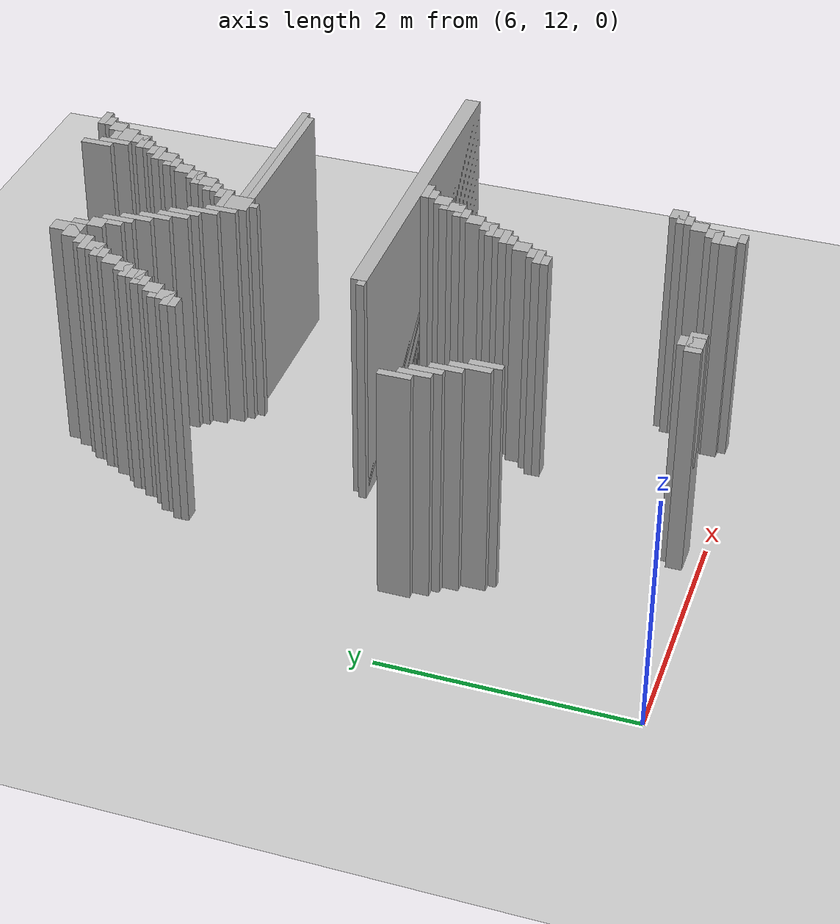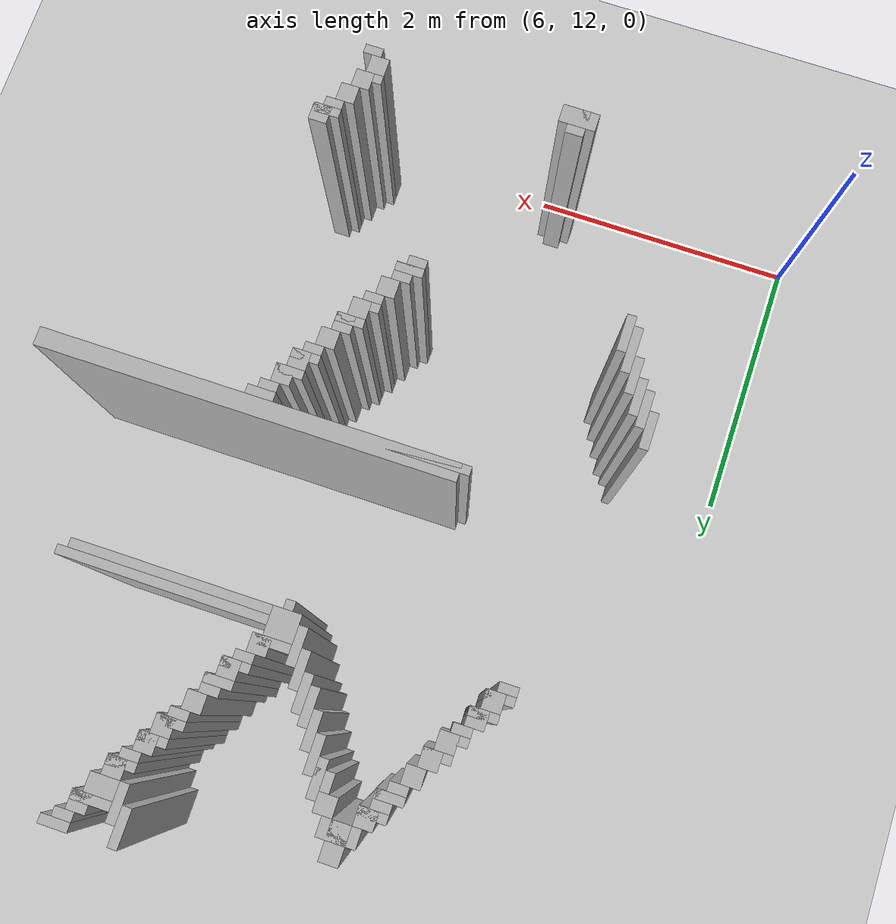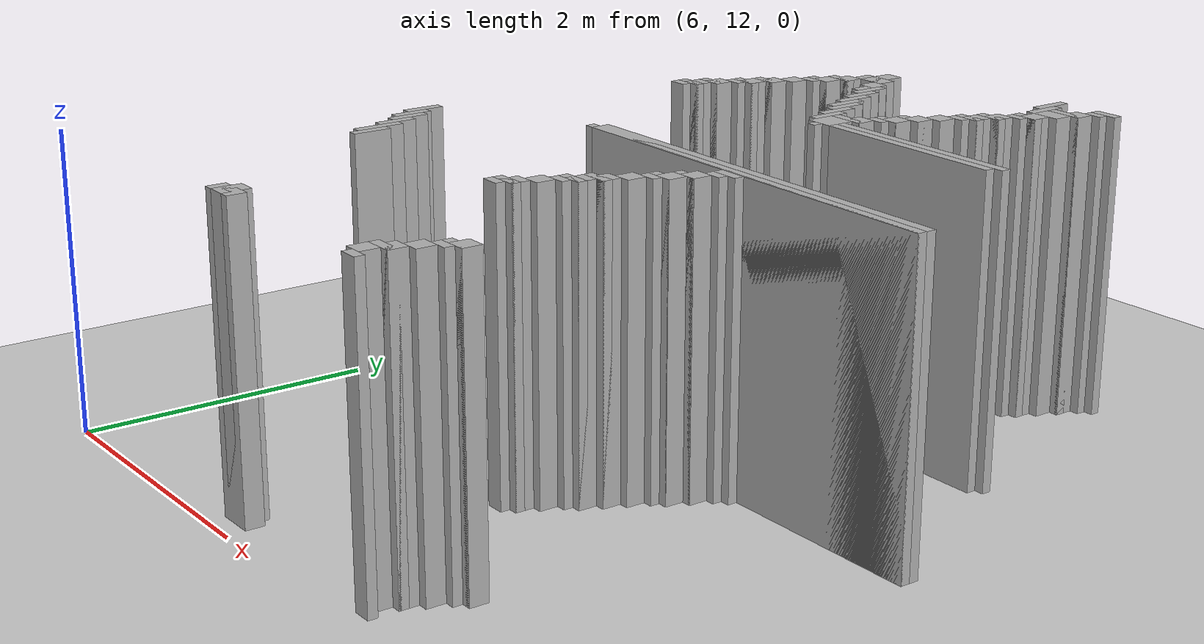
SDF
<sdf version="1.6">
 <world name="slam_world">
  <model name="ground_plane">
   <static>true</static>
   <link name="link">
    <collision name="collision">
     <geometry><plane><normal>0 0 1</normal><size>100 100</size></plane></geometry>
    </collision>
    <visual name="visual">
     <geometry><plane><normal>0 0 1</normal><size>100 100</size></plane></geometry>
     <material>
      <ambient>0.8 0.8 0.8 1</ambient>
      <diffuse>0.8 0.8 0.8 1</diffuse>
      <specular>0.8 0.8 0.8 1</specular>
     </material>
    </visual>
   </link>
  </model>
  <model name="wall_673">
   <static>true</static>
   <pose>9.095744680851062 17.425531914893615 1.0 0 0 0</pose>
   <link name="link">
    <collision name="collision">
     <geometry><box><size>0.06382978723404255 0.2553191489361702 2.0</size></box></geometry>
    </collision>
    <visual name="visual">
     <geometry><box><size>0.06382978723404255 0.2553191489361702 2.0</size></box></geometry>
     <material><ambient>0.5 0.5 0.5 1</ambient><diffuse>0.7 0.7 0.7 1</diffuse></material>
    </visual>
   </link>
  </model>
  <model name="wall_674">
   <static>true</static>
   <pose>9.478723404255318 17.52127659574468 1.0 0 0 0</pose>
   <link name="link">
    <collision name="collision">
     <geometry><box><size>0.19148936170212766 0.06382978723404255 2.0</size></box></geometry>
    </collision>
    <visual name="visual">
     <geometry><box><size>0.19148936170212766 0.06382978723404255 2.0</size></box></geometry>
     <material><ambient>0.5 0.5 0.5 1</ambient><diffuse>0.7 0.7 0.7 1</diffuse></material>
    </visual>
   </link>
  </model>
  <model name="wall_679">
   <static>true</static>
   <pose>9.446808510638297 17.457446808510635 1.0 0 0 0</pose>
   <link name="link">
    <collision name="collision">
     <geometry><box><size>0.1276595744680851 0.06382978723404255 2.0</size></box></geometry>
    </collision>
    <visual name="visual">
     <geometry><box><size>0.1276595744680851 0.06382978723404255 2.0</size></box></geometry>
     <material><ambient>0.5 0.5 0.5 1</ambient><diffuse>0.7 0.7 0.7 1</diffuse></material>
    </visual>
   </link>
  </model>
  <model name="wall_686">
   <static>true</static>
   <pose>9.159574468085106 17.29787234042553 1.0 0 0 0</pose>
   <link name="link">
    <collision name="collision">
     <geometry><box><size>0.06382978723404255 0.2553191489361702 2.0</size></box></geometry>
    </collision>
    <visual name="visual">
     <geometry><box><size>0.06382978723404255 0.2553191489361702 2.0</size></box></geometry>
     <material><ambient>0.5 0.5 0.5 1</ambient><diffuse>0.7 0.7 0.7 1</diffuse></material>
    </visual>
   </link>
  </model>
  <model name="wall_687">
   <static>true</static>
   <pose>9.382978723404255 17.361702127659573 1.0 0 0 0</pose>
   <link name="link">
    <collision name="collision">
     <geometry><box><size>0.1276595744680851 0.1276595744680851 2.0</size></box></geometry>
    </collision>
    <visual name="visual">
     <geometry><box><size>0.1276595744680851 0.1276595744680851 2.0</size></box></geometry>
     <material><ambient>0.5 0.5 0.5 1</ambient><diffuse>0.7 0.7 0.7 1</diffuse></material>
    </visual>
   </link>
  </model>
  <model name="wall_694">
   <static>true</static>
   <pose>9.319148936170212 17.329787234042552 1.0 0 0 0</pose>
   <link name="link">
    <collision name="collision">
     <geometry><box><size>0.2553191489361702 0.06382978723404255 2.0</size></box></geometry>
    </collision>
    <visual name="visual">
     <geometry><box><size>0.2553191489361702 0.06382978723404255 2.0</size></box></geometry>
     <material><ambient>0.5 0.5 0.5 1</ambient><diffuse>0.7 0.7 0.7 1</diffuse></material>
    </visual>
   </link>
  </model>
  <model name="wall_699">
   <static>true</static>
   <pose>9.287234042553191 17.23404255319149 1.0 0 0 0</pose>
   <link name="link">
    <collision name="collision">
     <geometry><box><size>0.19148936170212766 0.1276595744680851 2.0</size></box></geometry>
    </collision>
    <visual name="visual">
     <geometry><box><size>0.19148936170212766 0.1276595744680851 2.0</size></box></geometry>
     <material><ambient>0.5 0.5 0.5 1</ambient><diffuse>0.7 0.7 0.7 1</diffuse></material>
    </visual>
   </link>
  </model>
  <model name="wall_705">
   <static>true</static>
   <pose>7.8510638297872335 17.106382978723403 1.0 0 0 0</pose>
   <link name="link">
    <collision name="collision">
     <geometry><box><size>0.1276595744680851 0.2553191489361702 2.0</size></box></geometry>
    </collision>
    <visual name="visual">
     <geometry><box><size>0.1276595744680851 0.2553191489361702 2.0</size></box></geometry>
     <material><ambient>0.5 0.5 0.5 1</ambient><diffuse>0.7 0.7 0.7 1</diffuse></material>
    </visual>
   </link>
  </model>
  <model name="wall_710">
   <static>true</static>
   <pose>9.25531914893617 17.106382978723403 1.0 0 0 0</pose>
   <link name="link">
    <collision name="collision">
     <geometry><box><size>0.1276595744680851 0.1276595744680851 2.0</size></box></geometry>
    </collision>
    <visual name="visual">
     <geometry><box><size>0.1276595744680851 0.1276595744680851 2.0</size></box></geometry>
     <material><ambient>0.5 0.5 0.5 1</ambient><diffuse>0.7 0.7 0.7 1</diffuse></material>
    </visual>
   </link>
  </model>
  <model name="wall_716">
   <static>true</static>
   <pose>7.8510638297872335 17.04255319148936 1.0 0 0 0</pose>
   <link name="link">
    <collision name="collision">
     <geometry><box><size>0.2553191489361702 0.1276595744680851 2.0</size></box></geometry>
    </collision>
    <visual name="visual">
     <geometry><box><size>0.2553191489361702 0.1276595744680851 2.0</size></box></geometry>
     <material><ambient>0.5 0.5 0.5 1</ambient><diffuse>0.7 0.7 0.7 1</diffuse></material>
    </visual>
   </link>
  </model>
  <model name="wall_717">
   <static>true</static>
   <pose>9.223404255319148 17.074468085106382 1.0 0 0 0</pose>
   <link name="link">
    <collision name="collision">
     <geometry><box><size>0.19148936170212766 0.06382978723404255 2.0</size></box></geometry>
    </collision>
    <visual name="visual">
     <geometry><box><size>0.19148936170212766 0.06382978723404255 2.0</size></box></geometry>
     <material><ambient>0.5 0.5 0.5 1</ambient><diffuse>0.7 0.7 0.7 1</diffuse></material>
    </visual>
   </link>
  </model>
  <model name="wall_722">
   <static>true</static>
   <pose>9.191489361702127 17.01063829787234 1.0 0 0 0</pose>
   <link name="link">
    <collision name="collision">
     <geometry><box><size>0.1276595744680851 0.06382978723404255 2.0</size></box></geometry>
    </collision>
    <visual name="visual">
     <geometry><box><size>0.1276595744680851 0.06382978723404255 2.0</size></box></geometry>
     <material><ambient>0.5 0.5 0.5 1</ambient><diffuse>0.7 0.7 0.7 1</diffuse></material>
    </visual>
   </link>
  </model>
  <model name="wall_728">
   <static>true</static>
   <pose>7.723404255319148 16.914893617021274 1.0 0 0 0</pose>
   <link name="link">
    <collision name="collision">
     <geometry><box><size>0.1276595744680851 0.1276595744680851 2.0</size></box></geometry>
    </collision>
    <visual name="visual">
     <geometry><box><size>0.1276595744680851 0.1276595744680851 2.0</size></box></geometry>
     <material><ambient>0.5 0.5 0.5 1</ambient><diffuse>0.7 0.7 0.7 1</diffuse></material>
    </visual>
   </link>
  </model>
  <model name="wall_729">
   <static>true</static>
   <pose>7.978723404255319 16.914893617021274 1.0 0 0 0</pose>
   <link name="link">
    <collision name="collision">
     <geometry><box><size>0.1276595744680851 0.1276595744680851 2.0</size></box></geometry>
    </collision>
    <visual name="visual">
     <geometry><box><size>0.1276595744680851 0.1276595744680851 2.0</size></box></geometry>
     <material><ambient>0.5 0.5 0.5 1</ambient><diffuse>0.7 0.7 0.7 1</diffuse></material>
    </visual>
   </link>
  </model>
  <model name="wall_730">
   <static>true</static>
   <pose>9.127659574468085 16.914893617021274 1.0 0 0 0</pose>
   <link name="link">
    <collision name="collision">
     <geometry><box><size>0.1276595744680851 0.1276595744680851 2.0</size></box></geometry>
    </collision>
    <visual name="visual">
     <geometry><box><size>0.1276595744680851 0.1276595744680851 2.0</size></box></geometry>
     <material><ambient>0.5 0.5 0.5 1</ambient><diffuse>0.7 0.7 0.7 1</diffuse></material>
    </visual>
   </link>
  </model>
  <model name="wall_738">
   <static>true</static>
   <pose>7.691489361702127 16.882978723404253 1.0 0 0 0</pose>
   <link name="link">
    <collision name="collision">
     <geometry><box><size>0.19148936170212766 0.06382978723404255 2.0</size></box></geometry>
    </collision>
    <visual name="visual">
     <geometry><box><size>0.19148936170212766 0.06382978723404255 2.0</size></box></geometry>
     <material><ambient>0.5 0.5 0.5 1</ambient><diffuse>0.7 0.7 0.7 1</diffuse></material>
    </visual>
   </link>
  </model>
  <model name="wall_739">
   <static>true</static>
   <pose>8.074468085106382 16.78723404255319 1.0 0 0 0</pose>
   <link name="link">
    <collision name="collision">
     <geometry><box><size>0.06382978723404255 0.2553191489361702 2.0</size></box></geometry>
    </collision>
    <visual name="visual">
     <geometry><box><size>0.06382978723404255 0.2553191489361702 2.0</size></box></geometry>
     <material><ambient>0.5 0.5 0.5 1</ambient><diffuse>0.7 0.7 0.7 1</diffuse></material>
    </visual>
   </link>
  </model>
  <model name="wall_740">
   <static>true</static>
   <pose>9.095744680851062 16.882978723404253 1.0 0 0 0</pose>
   <link name="link">
    <collision name="collision">
     <geometry><box><size>0.19148936170212766 0.06382978723404255 2.0</size></box></geometry>
    </collision>
    <visual name="visual">
     <geometry><box><size>0.19148936170212766 0.06382978723404255 2.0</size></box></geometry>
     <material><ambient>0.5 0.5 0.5 1</ambient><diffuse>0.7 0.7 0.7 1</diffuse></material>
    </visual>
   </link>
  </model>
  <model name="wall_748">
   <static>true</static>
   <pose>7.659574468085106 16.78723404255319 1.0 0 0 0</pose>
   <link name="link">
    <collision name="collision">
     <geometry><box><size>0.1276595744680851 0.1276595744680851 2.0</size></box></geometry>
    </collision>
    <visual name="visual">
     <geometry><box><size>0.1276595744680851 0.1276595744680851 2.0</size></box></geometry>
     <material><ambient>0.5 0.5 0.5 1</ambient><diffuse>0.7 0.7 0.7 1</diffuse></material>
    </visual>
   </link>
  </model>
  <model name="wall_749">
   <static>true</static>
   <pose>8.042553191489361 16.78723404255319 1.0 0 0 0</pose>
   <link name="link">
    <collision name="collision">
     <geometry><box><size>0.1276595744680851 0.1276595744680851 2.0</size></box></geometry>
    </collision>
    <visual name="visual">
     <geometry><box><size>0.1276595744680851 0.1276595744680851 2.0</size></box></geometry>
     <material><ambient>0.5 0.5 0.5 1</ambient><diffuse>0.7 0.7 0.7 1</diffuse></material>
    </visual>
   </link>
  </model>
  <model name="wall_750">
   <static>true</static>
   <pose>9.063829787234042 16.78723404255319 1.0 0 0 0</pose>
   <link name="link">
    <collision name="collision">
     <geometry><box><size>0.1276595744680851 0.1276595744680851 2.0</size></box></geometry>
    </collision>
    <visual name="visual">
     <geometry><box><size>0.1276595744680851 0.1276595744680851 2.0</size></box></geometry>
     <material><ambient>0.5 0.5 0.5 1</ambient><diffuse>0.7 0.7 0.7 1</diffuse></material>
    </visual>
   </link>
  </model>
  <model name="wall_758">
   <static>true</static>
   <pose>7.627659574468084 16.75531914893617 1.0 0 0 0</pose>
   <link name="link">
    <collision name="collision">
     <geometry><box><size>0.19148936170212766 0.06382978723404255 2.0</size></box></geometry>
    </collision>
    <visual name="visual">
     <geometry><box><size>0.19148936170212766 0.06382978723404255 2.0</size></box></geometry>
     <material><ambient>0.5 0.5 0.5 1</ambient><diffuse>0.7 0.7 0.7 1</diffuse></material>
    </visual>
   </link>
  </model>
  <model name="wall_759">
   <static>true</static>
   <pose>8.138297872340425 16.659574468085104 1.0 0 0 0</pose>
   <link name="link">
    <collision name="collision">
     <geometry><box><size>0.06382978723404255 0.2553191489361702 2.0</size></box></geometry>
    </collision>
    <visual name="visual">
     <geometry><box><size>0.06382978723404255 0.2553191489361702 2.0</size></box></geometry>
     <material><ambient>0.5 0.5 0.5 1</ambient><diffuse>0.7 0.7 0.7 1</diffuse></material>
    </visual>
   </link>
  </model>
  <model name="wall_760">
   <static>true</static>
   <pose>9.03191489361702 16.75531914893617 1.0 0 0 0</pose>
   <link name="link">
    <collision name="collision">
     <geometry><box><size>0.19148936170212766 0.06382978723404255 2.0</size></box></geometry>
    </collision>
    <visual name="visual">
     <geometry><box><size>0.19148936170212766 0.06382978723404255 2.0</size></box></geometry>
     <material><ambient>0.5 0.5 0.5 1</ambient><diffuse>0.7 0.7 0.7 1</diffuse></material>
    </visual>
   </link>
  </model>
  <model name="wall_767">
   <static>true</static>
   <pose>7.595744680851063 16.691489361702125 1.0 0 0 0</pose>
   <link name="link">
    <collision name="collision">
     <geometry><box><size>0.1276595744680851 0.06382978723404255 2.0</size></box></geometry>
    </collision>
    <visual name="visual">
     <geometry><box><size>0.1276595744680851 0.06382978723404255 2.0</size></box></geometry>
     <material><ambient>0.5 0.5 0.5 1</ambient><diffuse>0.7 0.7 0.7 1</diffuse></material>
    </visual>
   </link>
  </model>
  <model name="wall_768">
   <static>true</static>
   <pose>9.0 16.691489361702125 1.0 0 0 0</pose>
   <link name="link">
    <collision name="collision">
     <geometry><box><size>0.1276595744680851 0.06382978723404255 2.0</size></box></geometry>
    </collision>
    <visual name="visual">
     <geometry><box><size>0.1276595744680851 0.06382978723404255 2.0</size></box></geometry>
     <material><ambient>0.5 0.5 0.5 1</ambient><diffuse>0.7 0.7 0.7 1</diffuse></material>
    </visual>
   </link>
  </model>
  <model name="wall_775">
   <static>true</static>
   <pose>7.531914893617021 16.595744680851062 1.0 0 0 0</pose>
   <link name="link">
    <collision name="collision">
     <geometry><box><size>0.1276595744680851 0.1276595744680851 2.0</size></box></geometry>
    </collision>
    <visual name="visual">
     <geometry><box><size>0.1276595744680851 0.1276595744680851 2.0</size></box></geometry>
     <material><ambient>0.5 0.5 0.5 1</ambient><diffuse>0.7 0.7 0.7 1</diffuse></material>
    </visual>
   </link>
  </model>
  <model name="wall_776">
   <static>true</static>
   <pose>8.202127659574467 16.53191489361702 1.0 0 0 0</pose>
   <link name="link">
    <collision name="collision">
     <geometry><box><size>0.06382978723404255 0.2553191489361702 2.0</size></box></geometry>
    </collision>
    <visual name="visual">
     <geometry><box><size>0.06382978723404255 0.2553191489361702 2.0</size></box></geometry>
     <material><ambient>0.5 0.5 0.5 1</ambient><diffuse>0.7 0.7 0.7 1</diffuse></material>
    </visual>
   </link>
  </model>
  <model name="wall_777">
   <static>true</static>
   <pose>8.936170212765957 16.595744680851062 1.0 0 0 0</pose>
   <link name="link">
    <collision name="collision">
     <geometry><box><size>0.1276595744680851 0.1276595744680851 2.0</size></box></geometry>
    </collision>
    <visual name="visual">
     <geometry><box><size>0.1276595744680851 0.1276595744680851 2.0</size></box></geometry>
     <material><ambient>0.5 0.5 0.5 1</ambient><diffuse>0.7 0.7 0.7 1</diffuse></material>
    </visual>
   </link>
  </model>
  <model name="wall_785">
   <static>true</static>
   <pose>7.468085106382978 16.46808510638298 1.0 0 0 0</pose>
   <link name="link">
    <collision name="collision">
     <geometry><box><size>0.1276595744680851 0.1276595744680851 2.0</size></box></geometry>
    </collision>
    <visual name="visual">
     <geometry><box><size>0.1276595744680851 0.1276595744680851 2.0</size></box></geometry>
     <material><ambient>0.5 0.5 0.5 1</ambient><diffuse>0.7 0.7 0.7 1</diffuse></material>
    </visual>
   </link>
  </model>
  <model name="wall_786">
   <static>true</static>
   <pose>8.26595744680851 16.404255319148934 1.0 0 0 0</pose>
   <link name="link">
    <collision name="collision">
     <geometry><box><size>0.06382978723404255 0.2553191489361702 2.0</size></box></geometry>
    </collision>
    <visual name="visual">
     <geometry><box><size>0.06382978723404255 0.2553191489361702 2.0</size></box></geometry>
     <material><ambient>0.5 0.5 0.5 1</ambient><diffuse>0.7 0.7 0.7 1</diffuse></material>
    </visual>
   </link>
  </model>
  <model name="wall_787">
   <static>true</static>
   <pose>8.872340425531915 16.46808510638298 1.0 0 0 0</pose>
   <link name="link">
    <collision name="collision">
     <geometry><box><size>0.1276595744680851 0.1276595744680851 2.0</size></box></geometry>
    </collision>
    <visual name="visual">
     <geometry><box><size>0.1276595744680851 0.1276595744680851 2.0</size></box></geometry>
     <material><ambient>0.5 0.5 0.5 1</ambient><diffuse>0.7 0.7 0.7 1</diffuse></material>
    </visual>
   </link>
  </model>
  <model name="wall_795">
   <static>true</static>
   <pose>7.436170212765957 16.436170212765955 1.0 0 0 0</pose>
   <link name="link">
    <collision name="collision">
     <geometry><box><size>0.19148936170212766 0.06382978723404255 2.0</size></box></geometry>
    </collision>
    <visual name="visual">
     <geometry><box><size>0.19148936170212766 0.06382978723404255 2.0</size></box></geometry>
     <material><ambient>0.5 0.5 0.5 1</ambient><diffuse>0.7 0.7 0.7 1</diffuse></material>
    </visual>
   </link>
  </model>
  <model name="wall_796">
   <static>true</static>
   <pose>8.329787234042552 16.340425531914892 1.0 0 0 0</pose>
   <link name="link">
    <collision name="collision">
     <geometry><box><size>0.06382978723404255 0.2553191489361702 2.0</size></box></geometry>
    </collision>
    <visual name="visual">
     <geometry><box><size>0.06382978723404255 0.2553191489361702 2.0</size></box></geometry>
     <material><ambient>0.5 0.5 0.5 1</ambient><diffuse>0.7 0.7 0.7 1</diffuse></material>
    </visual>
   </link>
  </model>
  <model name="wall_797">
   <static>true</static>
   <pose>8.840425531914892 16.436170212765955 1.0 0 0 0</pose>
   <link name="link">
    <collision name="collision">
     <geometry><box><size>0.19148936170212766 0.06382978723404255 2.0</size></box></geometry>
    </collision>
    <visual name="visual">
     <geometry><box><size>0.19148936170212766 0.06382978723404255 2.0</size></box></geometry>
     <material><ambient>0.5 0.5 0.5 1</ambient><diffuse>0.7 0.7 0.7 1</diffuse></material>
    </visual>
   </link>
  </model>
  <model name="wall_804">
   <static>true</static>
   <pose>7.404255319148936 16.340425531914892 1.0 0 0 0</pose>
   <link name="link">
    <collision name="collision">
     <geometry><box><size>0.1276595744680851 0.1276595744680851 2.0</size></box></geometry>
    </collision>
    <visual name="visual">
     <geometry><box><size>0.1276595744680851 0.1276595744680851 2.0</size></box></geometry>
     <material><ambient>0.5 0.5 0.5 1</ambient><diffuse>0.7 0.7 0.7 1</diffuse></material>
    </visual>
   </link>
  </model>
  <model name="wall_805">
   <static>true</static>
   <pose>8.808510638297872 16.340425531914892 1.0 0 0 0</pose>
   <link name="link">
    <collision name="collision">
     <geometry><box><size>0.1276595744680851 0.1276595744680851 2.0</size></box></geometry>
    </collision>
    <visual name="visual">
     <geometry><box><size>0.1276595744680851 0.1276595744680851 2.0</size></box></geometry>
     <material><ambient>0.5 0.5 0.5 1</ambient><diffuse>0.7 0.7 0.7 1</diffuse></material>
    </visual>
   </link>
  </model>
  <model name="wall_812">
   <static>true</static>
   <pose>7.372340425531914 16.30851063829787 1.0 0 0 0</pose>
   <link name="link">
    <collision name="collision">
     <geometry><box><size>0.19148936170212766 0.06382978723404255 2.0</size></box></geometry>
    </collision>
    <visual name="visual">
     <geometry><box><size>0.19148936170212766 0.06382978723404255 2.0</size></box></geometry>
     <material><ambient>0.5 0.5 0.5 1</ambient><diffuse>0.7 0.7 0.7 1</diffuse></material>
    </visual>
   </link>
  </model>
  <model name="wall_813">
   <static>true</static>
   <pose>8.393617021276595 16.212765957446805 1.0 0 0 0</pose>
   <link name="link">
    <collision name="collision">
     <geometry><box><size>0.06382978723404255 0.2553191489361702 2.0</size></box></geometry>
    </collision>
    <visual name="visual">
     <geometry><box><size>0.06382978723404255 0.2553191489361702 2.0</size></box></geometry>
     <material><ambient>0.5 0.5 0.5 1</ambient><diffuse>0.7 0.7 0.7 1</diffuse></material>
    </visual>
   </link>
  </model>
  <model name="wall_814">
   <static>true</static>
   <pose>8.77659574468085 16.30851063829787 1.0 0 0 0</pose>
   <link name="link">
    <collision name="collision">
     <geometry><box><size>0.19148936170212766 0.06382978723404255 2.0</size></box></geometry>
    </collision>
    <visual name="visual">
     <geometry><box><size>0.19148936170212766 0.06382978723404255 2.0</size></box></geometry>
     <material><ambient>0.5 0.5 0.5 1</ambient><diffuse>0.7 0.7 0.7 1</diffuse></material>
    </visual>
   </link>
  </model>
  <model name="wall_821">
   <static>true</static>
   <pose>7.340425531914893 16.24468085106383 1.0 0 0 0</pose>
   <link name="link">
    <collision name="collision">
     <geometry><box><size>0.1276595744680851 0.06382978723404255 2.0</size></box></geometry>
    </collision>
    <visual name="visual">
     <geometry><box><size>0.1276595744680851 0.06382978723404255 2.0</size></box></geometry>
     <material><ambient>0.5 0.5 0.5 1</ambient><diffuse>0.7 0.7 0.7 1</diffuse></material>
    </visual>
   </link>
  </model>
  <model name="wall_822">
   <static>true</static>
   <pose>8.74468085106383 16.24468085106383 1.0 0 0 0</pose>
   <link name="link">
    <collision name="collision">
     <geometry><box><size>0.1276595744680851 0.06382978723404255 2.0</size></box></geometry>
    </collision>
    <visual name="visual">
     <geometry><box><size>0.1276595744680851 0.06382978723404255 2.0</size></box></geometry>
     <material><ambient>0.5 0.5 0.5 1</ambient><diffuse>0.7 0.7 0.7 1</diffuse></material>
    </visual>
   </link>
  </model>
  <model name="wall_829">
   <static>true</static>
   <pose>7.276595744680851 16.148936170212764 1.0 0 0 0</pose>
   <link name="link">
    <collision name="collision">
     <geometry><box><size>0.1276595744680851 0.1276595744680851 2.0</size></box></geometry>
    </collision>
    <visual name="visual">
     <geometry><box><size>0.1276595744680851 0.1276595744680851 2.0</size></box></geometry>
     <material><ambient>0.5 0.5 0.5 1</ambient><diffuse>0.7 0.7 0.7 1</diffuse></material>
    </visual>
   </link>
  </model>
  <model name="wall_830">
   <static>true</static>
   <pose>8.457446808510637 16.085106382978722 1.0 0 0 0</pose>
   <link name="link">
    <collision name="collision">
     <geometry><box><size>0.06382978723404255 0.2553191489361702 2.0</size></box></geometry>
    </collision>
    <visual name="visual">
     <geometry><box><size>0.06382978723404255 0.2553191489361702 2.0</size></box></geometry>
     <material><ambient>0.5 0.5 0.5 1</ambient><diffuse>0.7 0.7 0.7 1</diffuse></material>
    </visual>
   </link>
  </model>
  <model name="wall_831">
   <static>true</static>
   <pose>8.680851063829786 16.148936170212764 1.0 0 0 0</pose>
   <link name="link">
    <collision name="collision">
     <geometry><box><size>0.1276595744680851 0.1276595744680851 2.0</size></box></geometry>
    </collision>
    <visual name="visual">
     <geometry><box><size>0.1276595744680851 0.1276595744680851 2.0</size></box></geometry>
     <material><ambient>0.5 0.5 0.5 1</ambient><diffuse>0.7 0.7 0.7 1</diffuse></material>
    </visual>
   </link>
  </model>
  <model name="wall_839">
   <static>true</static>
   <pose>7.244680851063829 16.117021276595743 1.0 0 0 0</pose>
   <link name="link">
    <collision name="collision">
     <geometry><box><size>0.19148936170212766 0.06382978723404255 2.0</size></box></geometry>
    </collision>
    <visual name="visual">
     <geometry><box><size>0.19148936170212766 0.06382978723404255 2.0</size></box></geometry>
     <material><ambient>0.5 0.5 0.5 1</ambient><diffuse>0.7 0.7 0.7 1</diffuse></material>
    </visual>
   </link>
  </model>
  <model name="wall_840">
   <static>true</static>
   <pose>8.617021276595745 16.117021276595743 1.0 0 0 0</pose>
   <link name="link">
    <collision name="collision">
     <geometry><box><size>0.2553191489361702 0.06382978723404255 2.0</size></box></geometry>
    </collision>
    <visual name="visual">
     <geometry><box><size>0.2553191489361702 0.06382978723404255 2.0</size></box></geometry>
     <material><ambient>0.5 0.5 0.5 1</ambient><diffuse>0.7 0.7 0.7 1</diffuse></material>
    </visual>
   </link>
  </model>
  <model name="wall_846">
   <static>true</static>
   <pose>7.212765957446808 16.02127659574468 1.0 0 0 0</pose>
   <link name="link">
    <collision name="collision">
     <geometry><box><size>0.1276595744680851 0.1276595744680851 2.0</size></box></geometry>
    </collision>
    <visual name="visual">
     <geometry><box><size>0.1276595744680851 0.1276595744680851 2.0</size></box></geometry>
     <material><ambient>0.5 0.5 0.5 1</ambient><diffuse>0.7 0.7 0.7 1</diffuse></material>
    </visual>
   </link>
  </model>
  <model name="wall_847">
   <static>true</static>
   <pose>8.585106382978722 15.989361702127658 1.0 0 0 0</pose>
   <link name="link">
    <collision name="collision">
     <geometry><box><size>0.19148936170212766 0.19148936170212766 2.0</size></box></geometry>
    </collision>
    <visual name="visual">
     <geometry><box><size>0.19148936170212766 0.19148936170212766 2.0</size></box></geometry>
     <material><ambient>0.5 0.5 0.5 1</ambient><diffuse>0.7 0.7 0.7 1</diffuse></material>
    </visual>
   </link>
  </model>
  <model name="wall_854">
   <static>true</static>
   <pose>7.180851063829786 15.989361702127658 1.0 0 0 0</pose>
   <link name="link">
    <collision name="collision">
     <geometry><box><size>0.19148936170212766 0.06382978723404255 2.0</size></box></geometry>
    </collision>
    <visual name="visual">
     <geometry><box><size>0.19148936170212766 0.06382978723404255 2.0</size></box></geometry>
     <material><ambient>0.5 0.5 0.5 1</ambient><diffuse>0.7 0.7 0.7 1</diffuse></material>
    </visual>
   </link>
  </model>
  <model name="wall_855">
   <static>true</static>
   <pose>9.382978723404255 15.989361702127658 1.0 0 0 0</pose>
   <link name="link">
    <collision name="collision">
     <geometry><box><size>1.404255319148936 0.06382978723404255 2.0</size></box></geometry>
    </collision>
    <visual name="visual">
     <geometry><box><size>1.404255319148936 0.06382978723404255 2.0</size></box></geometry>
     <material><ambient>0.5 0.5 0.5 1</ambient><diffuse>0.7 0.7 0.7 1</diffuse></material>
    </visual>
   </link>
  </model>
  <model name="wall_860">
   <static>true</static>
   <pose>7.148936170212766 15.925531914893616 1.0 0 0 0</pose>
   <link name="link">
    <collision name="collision">
     <geometry><box><size>0.1276595744680851 0.06382978723404255 2.0</size></box></geometry>
    </collision>
    <visual name="visual">
     <geometry><box><size>0.1276595744680851 0.06382978723404255 2.0</size></box></geometry>
     <material><ambient>0.5 0.5 0.5 1</ambient><diffuse>0.7 0.7 0.7 1</diffuse></material>
    </visual>
   </link>
  </model>
  <model name="wall_861">
   <static>true</static>
   <pose>9.351063829787233 15.925531914893616 1.0 0 0 0</pose>
   <link name="link">
    <collision name="collision">
     <geometry><box><size>1.3404255319148934 0.06382978723404255 2.0</size></box></geometry>
    </collision>
    <visual name="visual">
     <geometry><box><size>1.3404255319148934 0.06382978723404255 2.0</size></box></geometry>
     <material><ambient>0.5 0.5 0.5 1</ambient><diffuse>0.7 0.7 0.7 1</diffuse></material>
    </visual>
   </link>
  </model>
  <model name="wall_866">
   <static>true</static>
   <pose>8.585106382978722 15.861702127659573 1.0 0 0 0</pose>
   <link name="link">
    <collision name="collision">
     <geometry><box><size>0.06382978723404255 0.06382978723404255 2.0</size></box></geometry>
    </collision>
    <visual name="visual">
     <geometry><box><size>0.06382978723404255 0.06382978723404255 2.0</size></box></geometry>
     <material><ambient>0.5 0.5 0.5 1</ambient><diffuse>0.7 0.7 0.7 1</diffuse></material>
    </visual>
   </link>
  </model>
  <model name="wall_903">
   <static>true</static>
   <pose>9.287234042553191 14.744680851063828 1.0 0 0 0</pose>
   <link name="link">
    <collision name="collision">
     <geometry><box><size>2.8723404255319145 0.1276595744680851 2.0</size></box></geometry>
    </collision>
    <visual name="visual">
     <geometry><box><size>2.8723404255319145 0.1276595744680851 2.0</size></box></geometry>
     <material><ambient>0.5 0.5 0.5 1</ambient><diffuse>0.7 0.7 0.7 1</diffuse></material>
    </visual>
   </link>
  </model>
  <model name="wall_907">
   <static>true</static>
   <pose>9.25531914893617 14.712765957446807 1.0 0 0 0</pose>
   <link name="link">
    <collision name="collision">
     <geometry><box><size>2.936170212765957 0.06382978723404255 2.0</size></box></geometry>
    </collision>
    <visual name="visual">
     <geometry><box><size>2.936170212765957 0.06382978723404255 2.0</size></box></geometry>
     <material><ambient>0.5 0.5 0.5 1</ambient><diffuse>0.7 0.7 0.7 1</diffuse></material>
    </visual>
   </link>
  </model>
  <model name="wall_911">
   <static>true</static>
   <pose>9.223404255319148 14.648936170212766 1.0 0 0 0</pose>
   <link name="link">
    <collision name="collision">
     <geometry><box><size>0.19148936170212766 0.06382978723404255 2.0</size></box></geometry>
    </collision>
    <visual name="visual">
     <geometry><box><size>0.19148936170212766 0.06382978723404255 2.0</size></box></geometry>
     <material><ambient>0.5 0.5 0.5 1</ambient><diffuse>0.7 0.7 0.7 1</diffuse></material>
    </visual>
   </link>
  </model>
  <model name="wall_919">
   <static>true</static>
   <pose>9.191489361702127 14.585106382978722 1.0 0 0 0</pose>
   <link name="link">
    <collision name="collision">
     <geometry><box><size>0.1276595744680851 0.06382978723404255 2.0</size></box></geometry>
    </collision>
    <visual name="visual">
     <geometry><box><size>0.1276595744680851 0.06382978723404255 2.0</size></box></geometry>
     <material><ambient>0.5 0.5 0.5 1</ambient><diffuse>0.7 0.7 0.7 1</diffuse></material>
    </visual>
   </link>
  </model>
  <model name="wall_926">
   <static>true</static>
   <pose>9.127659574468085 14.489361702127658 1.0 0 0 0</pose>
   <link name="link">
    <collision name="collision">
     <geometry><box><size>0.1276595744680851 0.1276595744680851 2.0</size></box></geometry>
    </collision>
    <visual name="visual">
     <geometry><box><size>0.1276595744680851 0.1276595744680851 2.0</size></box></geometry>
     <material><ambient>0.5 0.5 0.5 1</ambient><diffuse>0.7 0.7 0.7 1</diffuse></material>
    </visual>
   </link>
  </model>
  <model name="wall_933">
   <static>true</static>
   <pose>9.095744680851062 14.457446808510637 1.0 0 0 0</pose>
   <link name="link">
    <collision name="collision">
     <geometry><box><size>0.19148936170212766 0.06382978723404255 2.0</size></box></geometry>
    </collision>
    <visual name="visual">
     <geometry><box><size>0.19148936170212766 0.06382978723404255 2.0</size></box></geometry>
     <material><ambient>0.5 0.5 0.5 1</ambient><diffuse>0.7 0.7 0.7 1</diffuse></material>
    </visual>
   </link>
  </model>
  <model name="wall_940">
   <static>true</static>
   <pose>9.063829787234042 14.361702127659573 1.0 0 0 0</pose>
   <link name="link">
    <collision name="collision">
     <geometry><box><size>0.1276595744680851 0.1276595744680851 2.0</size></box></geometry>
    </collision>
    <visual name="visual">
     <geometry><box><size>0.1276595744680851 0.1276595744680851 2.0</size></box></geometry>
     <material><ambient>0.5 0.5 0.5 1</ambient><diffuse>0.7 0.7 0.7 1</diffuse></material>
    </visual>
   </link>
  </model>
  <model name="wall_947">
   <static>true</static>
   <pose>9.03191489361702 14.329787234042552 1.0 0 0 0</pose>
   <link name="link">
    <collision name="collision">
     <geometry><box><size>0.19148936170212766 0.06382978723404255 2.0</size></box></geometry>
    </collision>
    <visual name="visual">
     <geometry><box><size>0.19148936170212766 0.06382978723404255 2.0</size></box></geometry>
     <material><ambient>0.5 0.5 0.5 1</ambient><diffuse>0.7 0.7 0.7 1</diffuse></material>
    </visual>
   </link>
  </model>
  <model name="wall_953">
   <static>true</static>
   <pose>9.0 14.265957446808509 1.0 0 0 0</pose>
   <link name="link">
    <collision name="collision">
     <geometry><box><size>0.1276595744680851 0.06382978723404255 2.0</size></box></geometry>
    </collision>
    <visual name="visual">
     <geometry><box><size>0.1276595744680851 0.06382978723404255 2.0</size></box></geometry>
     <material><ambient>0.5 0.5 0.5 1</ambient><diffuse>0.7 0.7 0.7 1</diffuse></material>
    </visual>
   </link>
  </model>
  <model name="wall_957">
   <static>true</static>
   <pose>6.797872340425531 14.106382978723403 1.0 0 0 0</pose>
   <link name="link">
    <collision name="collision">
     <geometry><box><size>0.06382978723404255 0.2553191489361702 2.0</size></box></geometry>
    </collision>
    <visual name="visual">
     <geometry><box><size>0.06382978723404255 0.2553191489361702 2.0</size></box></geometry>
     <material><ambient>0.5 0.5 0.5 1</ambient><diffuse>0.7 0.7 0.7 1</diffuse></material>
    </visual>
   </link>
  </model>
  <model name="wall_958">
   <static>true</static>
   <pose>8.936170212765957 14.170212765957446 1.0 0 0 0</pose>
   <link name="link">
    <collision name="collision">
     <geometry><box><size>0.1276595744680851 0.1276595744680851 2.0</size></box></geometry>
    </collision>
    <visual name="visual">
     <geometry><box><size>0.1276595744680851 0.1276595744680851 2.0</size></box></geometry>
     <material><ambient>0.5 0.5 0.5 1</ambient><diffuse>0.7 0.7 0.7 1</diffuse></material>
    </visual>
   </link>
  </model>
  <model name="wall_964">
   <static>true</static>
   <pose>6.861702127659574 13.978723404255318 1.0 0 0 0</pose>
   <link name="link">
    <collision name="collision">
     <geometry><box><size>0.06382978723404255 0.2553191489361702 2.0</size></box></geometry>
    </collision>
    <visual name="visual">
     <geometry><box><size>0.06382978723404255 0.2553191489361702 2.0</size></box></geometry>
     <material><ambient>0.5 0.5 0.5 1</ambient><diffuse>0.7 0.7 0.7 1</diffuse></material>
    </visual>
   </link>
  </model>
  <model name="wall_965">
   <static>true</static>
   <pose>8.872340425531915 14.042553191489361 1.0 0 0 0</pose>
   <link name="link">
    <collision name="collision">
     <geometry><box><size>0.1276595744680851 0.1276595744680851 2.0</size></box></geometry>
    </collision>
    <visual name="visual">
     <geometry><box><size>0.1276595744680851 0.1276595744680851 2.0</size></box></geometry>
     <material><ambient>0.5 0.5 0.5 1</ambient><diffuse>0.7 0.7 0.7 1</diffuse></material>
    </visual>
   </link>
  </model>
  <model name="wall_971">
   <static>true</static>
   <pose>6.925531914893616 13.914893617021276 1.0 0 0 0</pose>
   <link name="link">
    <collision name="collision">
     <geometry><box><size>0.06382978723404255 0.2553191489361702 2.0</size></box></geometry>
    </collision>
    <visual name="visual">
     <geometry><box><size>0.06382978723404255 0.2553191489361702 2.0</size></box></geometry>
     <material><ambient>0.5 0.5 0.5 1</ambient><diffuse>0.7 0.7 0.7 1</diffuse></material>
    </visual>
   </link>
  </model>
  <model name="wall_972">
   <static>true</static>
   <pose>8.840425531914892 14.010638297872338 1.0 0 0 0</pose>
   <link name="link">
    <collision name="collision">
     <geometry><box><size>0.19148936170212766 0.06382978723404255 2.0</size></box></geometry>
    </collision>
    <visual name="visual">
     <geometry><box><size>0.19148936170212766 0.06382978723404255 2.0</size></box></geometry>
     <material><ambient>0.5 0.5 0.5 1</ambient><diffuse>0.7 0.7 0.7 1</diffuse></material>
    </visual>
   </link>
  </model>
  <model name="wall_978">
   <static>true</static>
   <pose>8.808510638297872 13.914893617021276 1.0 0 0 0</pose>
   <link name="link">
    <collision name="collision">
     <geometry><box><size>0.1276595744680851 0.1276595744680851 2.0</size></box></geometry>
    </collision>
    <visual name="visual">
     <geometry><box><size>0.1276595744680851 0.1276595744680851 2.0</size></box></geometry>
     <material><ambient>0.5 0.5 0.5 1</ambient><diffuse>0.7 0.7 0.7 1</diffuse></material>
    </visual>
   </link>
  </model>
  <model name="wall_982">
   <static>true</static>
   <pose>6.989361702127659 13.787234042553191 1.0 0 0 0</pose>
   <link name="link">
    <collision name="collision">
     <geometry><box><size>0.06382978723404255 0.2553191489361702 2.0</size></box></geometry>
    </collision>
    <visual name="visual">
     <geometry><box><size>0.06382978723404255 0.2553191489361702 2.0</size></box></geometry>
     <material><ambient>0.5 0.5 0.5 1</ambient><diffuse>0.7 0.7 0.7 1</diffuse></material>
    </visual>
   </link>
  </model>
  <model name="wall_983">
   <static>true</static>
   <pose>8.77659574468085 13.882978723404253 1.0 0 0 0</pose>
   <link name="link">
    <collision name="collision">
     <geometry><box><size>0.19148936170212766 0.06382978723404255 2.0</size></box></geometry>
    </collision>
    <visual name="visual">
     <geometry><box><size>0.19148936170212766 0.06382978723404255 2.0</size></box></geometry>
     <material><ambient>0.5 0.5 0.5 1</ambient><diffuse>0.7 0.7 0.7 1</diffuse></material>
    </visual>
   </link>
  </model>
  <model name="wall_989">
   <static>true</static>
   <pose>8.74468085106383 13.819148936170212 1.0 0 0 0</pose>
   <link name="link">
    <collision name="collision">
     <geometry><box><size>0.1276595744680851 0.06382978723404255 2.0</size></box></geometry>
    </collision>
    <visual name="visual">
     <geometry><box><size>0.1276595744680851 0.06382978723404255 2.0</size></box></geometry>
     <material><ambient>0.5 0.5 0.5 1</ambient><diffuse>0.7 0.7 0.7 1</diffuse></material>
    </visual>
   </link>
  </model>
  <model name="wall_993">
   <static>true</static>
   <pose>7.053191489361701 13.627659574468083 1.0 0 0 0</pose>
   <link name="link">
    <collision name="collision">
     <geometry><box><size>0.06382978723404255 0.3191489361702127 2.0</size></box></geometry>
    </collision>
    <visual name="visual">
     <geometry><box><size>0.06382978723404255 0.3191489361702127 2.0</size></box></geometry>
     <material><ambient>0.5 0.5 0.5 1</ambient><diffuse>0.7 0.7 0.7 1</diffuse></material>
    </visual>
   </link>
  </model>
  <model name="wall_994">
   <static>true</static>
   <pose>8.680851063829786 13.723404255319148 1.0 0 0 0</pose>
   <link name="link">
    <collision name="collision">
     <geometry><box><size>0.1276595744680851 0.1276595744680851 2.0</size></box></geometry>
    </collision>
    <visual name="visual">
     <geometry><box><size>0.1276595744680851 0.1276595744680851 2.0</size></box></geometry>
     <material><ambient>0.5 0.5 0.5 1</ambient><diffuse>0.7 0.7 0.7 1</diffuse></material>
    </visual>
   </link>
  </model>
  <model name="wall_1000">
   <static>true</static>
   <pose>7.117021276595744 13.53191489361702 1.0 0 0 0</pose>
   <link name="link">
    <collision name="collision">
     <geometry><box><size>0.06382978723404255 0.2553191489361702 2.0</size></box></geometry>
    </collision>
    <visual name="visual">
     <geometry><box><size>0.06382978723404255 0.2553191489361702 2.0</size></box></geometry>
     <material><ambient>0.5 0.5 0.5 1</ambient><diffuse>0.7 0.7 0.7 1</diffuse></material>
    </visual>
   </link>
  </model>
  <model name="wall_1001">
   <static>true</static>
   <pose>8.617021276595745 13.595744680851062 1.0 0 0 0</pose>
   <link name="link">
    <collision name="collision">
     <geometry><box><size>0.1276595744680851 0.1276595744680851 2.0</size></box></geometry>
    </collision>
    <visual name="visual">
     <geometry><box><size>0.1276595744680851 0.1276595744680851 2.0</size></box></geometry>
     <material><ambient>0.5 0.5 0.5 1</ambient><diffuse>0.7 0.7 0.7 1</diffuse></material>
    </visual>
   </link>
  </model>
  <model name="wall_1008">
   <static>true</static>
   <pose>8.585106382978722 13.563829787234042 1.0 0 0 0</pose>
   <link name="link">
    <collision name="collision">
     <geometry><box><size>0.19148936170212766 0.06382978723404255 2.0</size></box></geometry>
    </collision>
    <visual name="visual">
     <geometry><box><size>0.19148936170212766 0.06382978723404255 2.0</size></box></geometry>
     <material><ambient>0.5 0.5 0.5 1</ambient><diffuse>0.7 0.7 0.7 1</diffuse></material>
    </visual>
   </link>
  </model>
  <model name="wall_1013">
   <static>true</static>
   <pose>8.553191489361701 13.499999999999998 1.0 0 0 0</pose>
   <link name="link">
    <collision name="collision">
     <geometry><box><size>0.1276595744680851 0.06382978723404255 2.0</size></box></geometry>
    </collision>
    <visual name="visual">
     <geometry><box><size>0.1276595744680851 0.06382978723404255 2.0</size></box></geometry>
     <material><ambient>0.5 0.5 0.5 1</ambient><diffuse>0.7 0.7 0.7 1</diffuse></material>
    </visual>
   </link>
  </model>
  <model name="wall_1100">
   <static>true</static>
   <pose>9.51063829787234 12.702127659574467 1.0 0 0 0</pose>
   <link name="link">
    <collision name="collision">
     <geometry><box><size>0.1276595744680851 0.1276595744680851 2.0</size></box></geometry>
    </collision>
    <visual name="visual">
     <geometry><box><size>0.1276595744680851 0.1276595744680851 2.0</size></box></geometry>
     <material><ambient>0.5 0.5 0.5 1</ambient><diffuse>0.7 0.7 0.7 1</diffuse></material>
    </visual>
   </link>
  </model>
  <model name="wall_1107">
   <static>true</static>
   <pose>9.478723404255318 12.670212765957446 1.0 0 0 0</pose>
   <link name="link">
    <collision name="collision">
     <geometry><box><size>0.19148936170212766 0.06382978723404255 2.0</size></box></geometry>
    </collision>
    <visual name="visual">
     <geometry><box><size>0.19148936170212766 0.06382978723404255 2.0</size></box></geometry>
     <material><ambient>0.5 0.5 0.5 1</ambient><diffuse>0.7 0.7 0.7 1</diffuse></material>
    </visual>
   </link>
  </model>
  <model name="wall_1112">
   <static>true</static>
   <pose>9.446808510638297 12.606382978723403 1.0 0 0 0</pose>
   <link name="link">
    <collision name="collision">
     <geometry><box><size>0.1276595744680851 0.06382978723404255 2.0</size></box></geometry>
    </collision>
    <visual name="visual">
     <geometry><box><size>0.1276595744680851 0.06382978723404255 2.0</size></box></geometry>
     <material><ambient>0.5 0.5 0.5 1</ambient><diffuse>0.7 0.7 0.7 1</diffuse></material>
    </visual>
   </link>
  </model>
  <model name="wall_1119">
   <static>true</static>
   <pose>9.382978723404255 12.51063829787234 1.0 0 0 0</pose>
   <link name="link">
    <collision name="collision">
     <geometry><box><size>0.1276595744680851 0.1276595744680851 2.0</size></box></geometry>
    </collision>
    <visual name="visual">
     <geometry><box><size>0.1276595744680851 0.1276595744680851 2.0</size></box></geometry>
     <material><ambient>0.5 0.5 0.5 1</ambient><diffuse>0.7 0.7 0.7 1</diffuse></material>
    </visual>
   </link>
  </model>
  <model name="wall_1128">
   <static>true</static>
   <pose>9.319148936170212 12.382978723404255 1.0 0 0 0</pose>
   <link name="link">
    <collision name="collision">
     <geometry><box><size>0.1276595744680851 0.1276595744680851 2.0</size></box></geometry>
    </collision>
    <visual name="visual">
     <geometry><box><size>0.1276595744680851 0.1276595744680851 2.0</size></box></geometry>
     <material><ambient>0.5 0.5 0.5 1</ambient><diffuse>0.7 0.7 0.7 1</diffuse></material>
    </visual>
   </link>
  </model>
  <model name="wall_1136">
   <static>true</static>
   <pose>9.287234042553191 12.351063829787233 1.0 0 0 0</pose>
   <link name="link">
    <collision name="collision">
     <geometry><box><size>0.19148936170212766 0.06382978723404255 2.0</size></box></geometry>
    </collision>
    <visual name="visual">
     <geometry><box><size>0.19148936170212766 0.06382978723404255 2.0</size></box></geometry>
     <material><ambient>0.5 0.5 0.5 1</ambient><diffuse>0.7 0.7 0.7 1</diffuse></material>
    </visual>
   </link>
  </model>
  <model name="wall_1141">
   <static>true</static>
   <pose>7.8510638297872335 12.223404255319148 1.0 0 0 0</pose>
   <link name="link">
    <collision name="collision">
     <geometry><box><size>0.1276595744680851 0.19148936170212766 2.0</size></box></geometry>
    </collision>
    <visual name="visual">
     <geometry><box><size>0.1276595744680851 0.19148936170212766 2.0</size></box></geometry>
     <material><ambient>0.5 0.5 0.5 1</ambient><diffuse>0.7 0.7 0.7 1</diffuse></material>
    </visual>
   </link>
  </model>
  <model name="wall_1142">
   <static>true</static>
   <pose>9.25531914893617 12.25531914893617 1.0 0 0 0</pose>
   <link name="link">
    <collision name="collision">
     <geometry><box><size>0.1276595744680851 0.1276595744680851 2.0</size></box></geometry>
    </collision>
    <visual name="visual">
     <geometry><box><size>0.1276595744680851 0.1276595744680851 2.0</size></box></geometry>
     <material><ambient>0.5 0.5 0.5 1</ambient><diffuse>0.7 0.7 0.7 1</diffuse></material>
    </visual>
   </link>
  </model>
  <model name="wall_1147">
   <static>true</static>
   <pose>7.8510638297872335 12.191489361702127 1.0 0 0 0</pose>
   <link name="link">
    <collision name="collision">
     <geometry><box><size>0.2553191489361702 0.1276595744680851 2.0</size></box></geometry>
    </collision>
    <visual name="visual">
     <geometry><box><size>0.2553191489361702 0.1276595744680851 2.0</size></box></geometry>
     <material><ambient>0.5 0.5 0.5 1</ambient><diffuse>0.7 0.7 0.7 1</diffuse></material>
    </visual>
   </link>
  </model>
  <model name="wall_1155">
   <static>true</static>
   <pose>9.319148936170212 12.159574468085106 1.0 0 0 0</pose>
   <link name="link">
    <collision name="collision">
     <geometry><box><size>0.1276595744680851 0.06382978723404255 2.0</size></box></geometry>
    </collision>
    <visual name="visual">
     <geometry><box><size>0.1276595744680851 0.06382978723404255 2.0</size></box></geometry>
     <material><ambient>0.5 0.5 0.5 1</ambient><diffuse>0.7 0.7 0.7 1</diffuse></material>
    </visual>
   </link>
  </model>
 </world>
</sdf>
